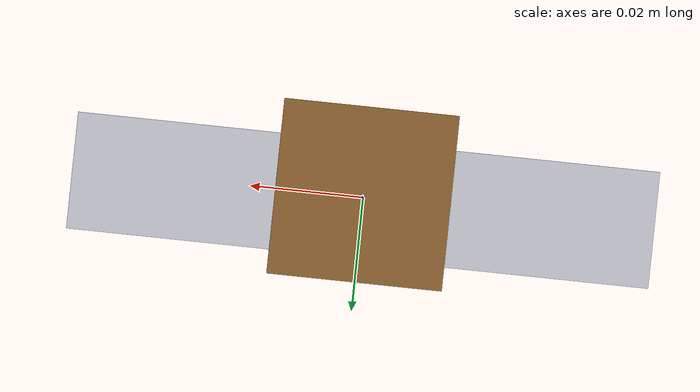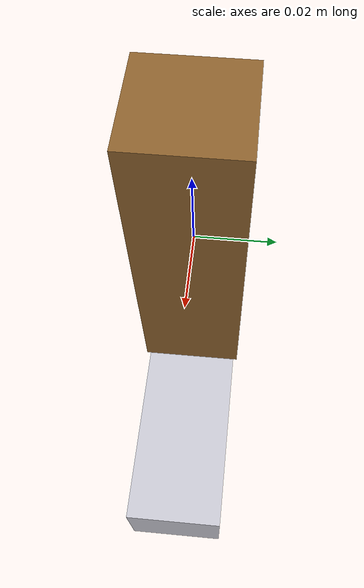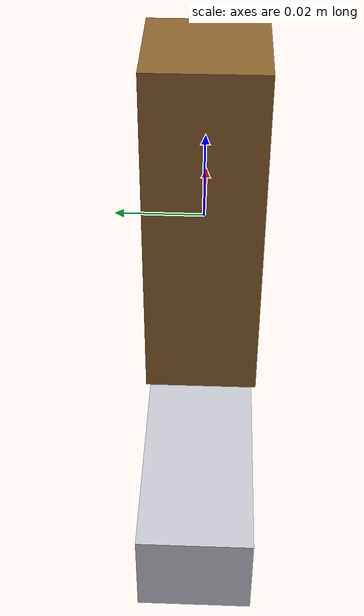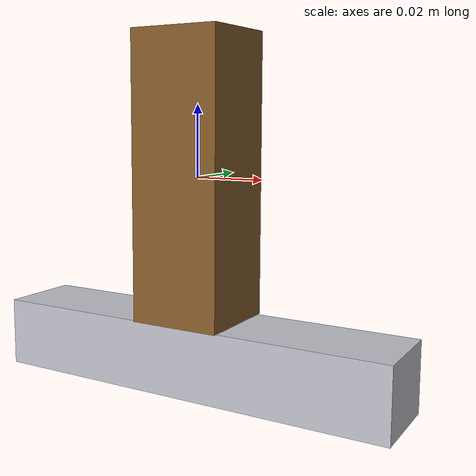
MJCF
<mujoco model="pusher_tool">
  <worldbody>
    <body>
      <body name="object">
        <!-- Handle: 2.6cm x 2.6cm x 8cm box, origin at handle center. -->
        <!-- EEF grasps at origin z; blade is 5cm below. -->
        <geom type="box" size="0.013 0.013 0.040" pos="0 0 0"
              rgba="0.55 0.38 0.18 1" group="1" contype="0" conaffinity="0" />
        <geom type="box" size="0.013 0.013 0.040" pos="0 0 0"
              rgba="0.55 0.38 0.18 1" group="0"
              density="400" friction="6.0 0.05 0.0001"
              solimp="0.995 0.995 0.001" solref="0.002 1" />
        <!-- Blade: 12cm wide x 2.4cm deep x 2cm tall, flush with handle bottom. -->
        <!-- blade top at z=-0.040 = handle bottom; blade bottom at z=-0.060. -->
        <geom type="box" size="0.060 0.012 0.010" pos="0 0 -0.050"
              rgba="0.78 0.78 0.82 1" group="1" contype="0" conaffinity="0" />
        <geom type="box" size="0.060 0.012 0.010" pos="0 0 -0.050"
              rgba="0.78 0.78 0.82 1" group="0"
              density="800" friction="6.0 0.05 0.0001"
              solimp="0.995 0.995 0.001" solref="0.002 1" />
      </body>
      <!-- bottom_site at blade bottom (table contact point) -->
      <site rgba="0 0 0 0" size="0.005" pos="0 0 -0.060" name="bottom_site" group="0" />
      <site rgba="0 0 0 0" size="0.005" pos="0 0 0.040" name="top_site" group="0" />
      <site rgba="0 0 0 0" size="0.060" pos="0.060 0.012 -0.050" name="horizontal_radius_site" group="0" />
    </body>
  </worldbody>
</mujoco>
